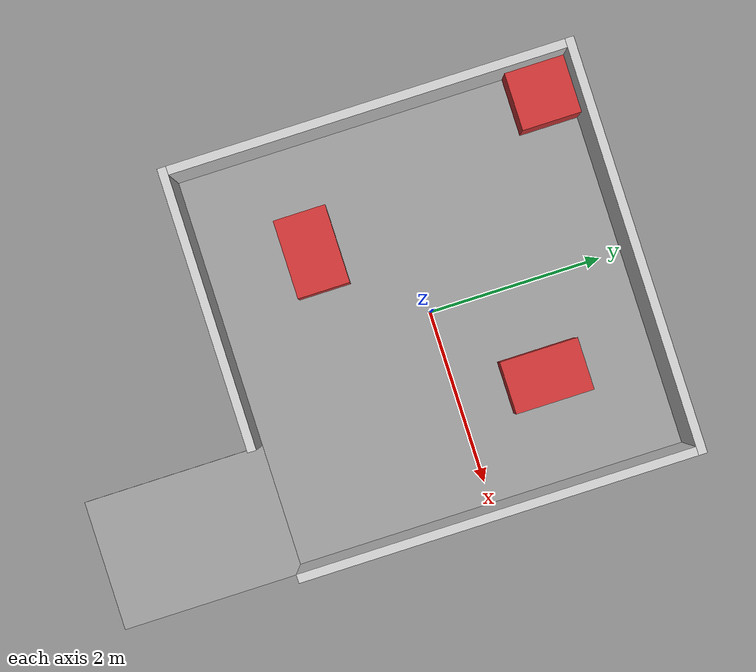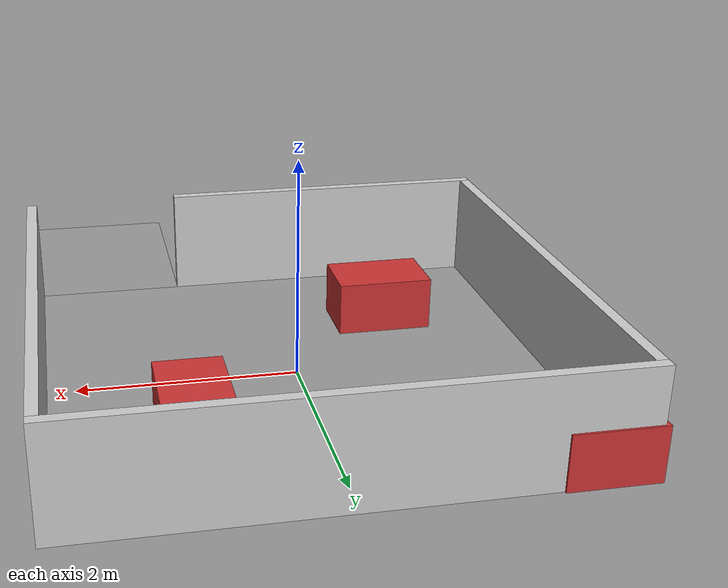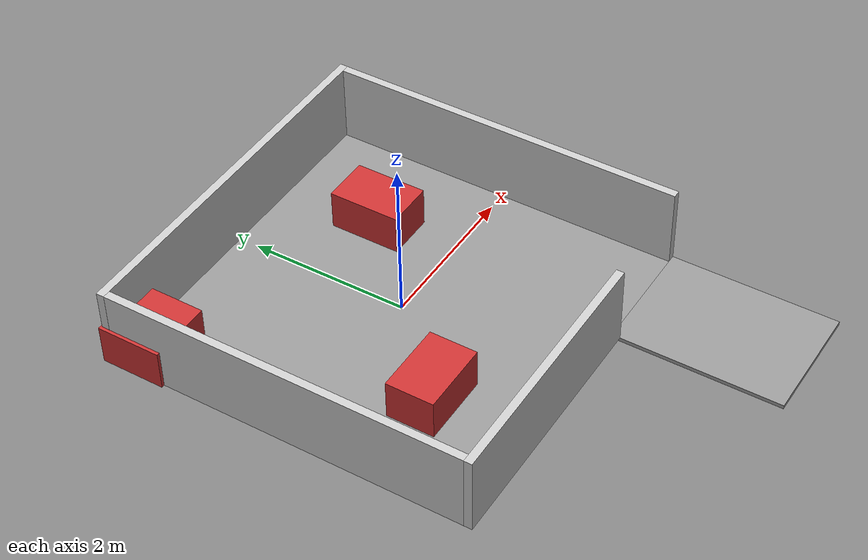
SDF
<?xml version="1.0" ?>
<sdf version="1.8">
  <world name="arena_world">

    <!-- Required plugins for Gazebo Harmonic / ROS 2 Jazzy -->
    <plugin filename="gz-sim-physics-system"
            name="gz::sim::systems::Physics"/>
    <plugin filename="gz-sim-user-commands-system"
            name="gz::sim::systems::UserCommands"/>
    <plugin filename="gz-sim-scene-broadcaster-system"
            name="gz::sim::systems::SceneBroadcaster"/>
    <plugin filename="gz-sim-sensors-system"
            name="gz::sim::systems::Sensors">
      <render_engine>ogre2</render_engine>
    </plugin>
    <plugin filename="gz-sim-imu-system"
            name="gz::sim::systems::Imu"/>
    <plugin filename="gz-sim-contact-system"
            name="gz::sim::systems::Contact"/>

    <!-- Physics -->
    <physics name="1ms" type="ignored">
      <max_step_size>0.001</max_step_size>
      <real_time_factor>1.0</real_time_factor>
    </physics>

    <scene>
      <shadows>true</shadows>
    </scene>

    <!-- Sun -->
    <light name="sun" type="directional">
      <cast_shadows>true</cast_shadows>
      <pose>0 0 10 0 0 0</pose>
      <diffuse>0.8 0.8 0.8 1</diffuse>
      <specular>0.1 0.1 0.1 1</specular>
      <attenuation>
        <range>1000</range>
        <constant>0.9</constant>
        <linear>0.01</linear>
        <quadratic>0.001</quadratic>
      </attenuation>
      <direction>-0.5 0.5 -1</direction>
    </light>

    <!-- ── Ground: 4.5 m × 4.5 m box (top surface at z = 0) ── -->
    <model name="arena_ground">
      <static>true</static>
      <pose>0 0 -0.025 0 0 0</pose>

      <link name="link">
        <collision name="collision">
          <geometry>
            <box><size>4.5 4.5 0.05</size></box>
          </geometry>
        </collision>
        <visual name="visual">
          <geometry>
            <box><size>4.5 4.5 0.05</size></box>
          </geometry>
          <material>
            <ambient>0.6 0.6 0.6 1</ambient>
            <diffuse>0.6 0.6 0.6 1</diffuse>
          </material>
        </visual>
      </link>
    </model>

    <model name="entrance_floor">
      <static>true</static>
      <pose>1.6 -3.3 -0.025 0 0 0</pose>
      <link name="link">
        <collision name="collision">
          <geometry>
            <box><size>1.5 2.1 0.05</size></box>
          </geometry>
        </collision>
        <visual name="visual">
          <geometry>
            <box><size>1.5 2.1 0.05</size></box>
          </geometry>
          <material>
            <ambient>0.6 0.6 0.6 1</ambient>
            <diffuse>0.6 0.6 0.6 1</diffuse>
          </material>
        </visual>
      </link>
    </model>

    <!--
      Wall material shared by all wall segments:
        ambient / diffuse: light grey
    -->

    <!-- ── NORTH wall (full, +Y side) ──
         Spans x: -2.35 … +2.35  (4.7 m, covers corners)
         Centre: (0, 2.3, 1.0)
    -->
    <model name="wall_north">
      <static>true</static>
      <pose>0 2.3 0.5 0 0 0</pose>
      <link name="link">
        <collision name="collision">
          <geometry>
            <box><size>4.7 0.1 1.0</size></box>
          </geometry>
        </collision>
        <visual name="visual">
          <geometry>
            <box><size>4.7 0.1 1.0</size></box>
          </geometry>
          <material>
            <ambient>0.8 0.8 0.8 1</ambient>
            <diffuse>0.8 0.8 0.8 1</diffuse>
          </material>
        </visual>
      </link>
    </model>

    <!-- ── SOUTH wall (–Y side, x: -2.35 … +0.85)
         1.5 m entrance gap at east end (x: +0.85 … +2.35)
         Length: 3.2 m   Centre x: (-2.35 + 0.85) / 2 = -0.75
    -->
    <model name="wall_south">
      <static>true</static>
      <pose>-0.75 -2.3 0.5 0 0 0</pose>
      <link name="link">
        <collision name="collision">
          <geometry>
            <box><size>3.2 0.1 1.0</size></box>
          </geometry>
        </collision>
        <visual name="visual">
          <geometry>
            <box><size>3.2 0.1 1.0</size></box>
          </geometry>
          <material>
            <ambient>0.8 0.8 0.8 1</ambient>
            <diffuse>0.8 0.8 0.8 1</diffuse>
          </material>
        </visual>
      </link>
    </model>

    <!-- ── EAST wall (+X side, y: -2.25 … +2.25) – fully closed
         Length: 4.5 m   Centre: (2.3, 0, 0.5)
    -->
    <model name="wall_east">
      <static>true</static>
      <pose>2.3 0 0.5 0 0 0</pose>
      <link name="link">
        <collision name="collision">
          <geometry>
            <box><size>0.1 4.5 1.0</size></box>
          </geometry>
        </collision>
        <visual name="visual">
          <geometry>
            <box><size>0.1 4.5 1.0</size></box>
          </geometry>
          <material>
            <ambient>0.8 0.8 0.8 1</ambient>
            <diffuse>0.8 0.8 0.8 1</diffuse>
          </material>
        </visual>
      </link>
    </model>

    <!-- ── WEST wall (–X side, y: -2.25 … +2.25)
         Centre: (-2.3, 0, 1.0)
    -->
    <model name="wall_west">
      <static>true</static>
      <pose>-2.3 0 0.5 0 0 0</pose>
      <link name="link">
        <collision name="collision">
          <geometry>
            <box><size>0.1 4.5 1.0</size></box>
          </geometry>
        </collision>
        <visual name="visual">
          <geometry>
            <box><size>0.1 4.5 1.0</size></box>
          </geometry>
          <material>
            <ambient>0.8 0.8 0.8 1</ambient>
            <diffuse>0.8 0.8 0.8 1</diffuse>
          </material>
        </visual>
      </link>
    </model>

    <!-- ── Static obstacles (cylinders r=0.15 m, h=0.5 m) ── -->
    <model name="obstacle_1">
      <static>true</static>
      <pose>-1.99 1.97 0.25 0 0 0</pose>
      <link name="link">
        <collision name="collision">
          <geometry>
            <box><size>0.8 0.8 0.5</size></box>
          </geometry>
        </collision>
        <visual name="visual">
          <geometry>
            <box><size>0.8 0.8 0.5</size></box>
          </geometry>
          <material>
            <ambient>0.8 0.2 0.2 1</ambient>
            <diffuse>0.8 0.2 0.2 1</diffuse>
          </material>
        </visual>
      </link>
    </model>

    <model name="obstacle_2">
      <static>true</static>
      <pose>1.06 1.0 0.25 0 0 0</pose>
      <link name="link">
        <collision name="collision">
          <geometry>
            <box><size>0.6 0.9 0.5</size></box>
          </geometry>
        </collision>
        <visual name="visual">
          <geometry>
            <box><size>0.6 0.9 0.5</size></box>
          </geometry>
          <material>
            <ambient>0.8 0.2 0.2 1</ambient>
            <diffuse>0.8 0.2 0.2 1</diffuse>
          </material>
        </visual>
      </link>
    </model>

    <model name="obstacle_3">
      <static>true</static>
      <pose>-1.03 -1.05 0.25 0 0 0</pose>
      <link name="link">
        <collision name="collision">
          <geometry>
            <box><size>0.9 0.6 0.5</size></box>
          </geometry>
        </collision>
        <visual name="visual">
          <geometry>
            <box><size>0.9 0.6 0.5</size></box>
          </geometry>
          <material>
            <ambient>0.8 0.2 0.2 1</ambient>
            <diffuse>0.8 0.2 0.2 1</diffuse>
          </material>
        </visual>
      </link>
    </model>

  </world>
</sdf>
